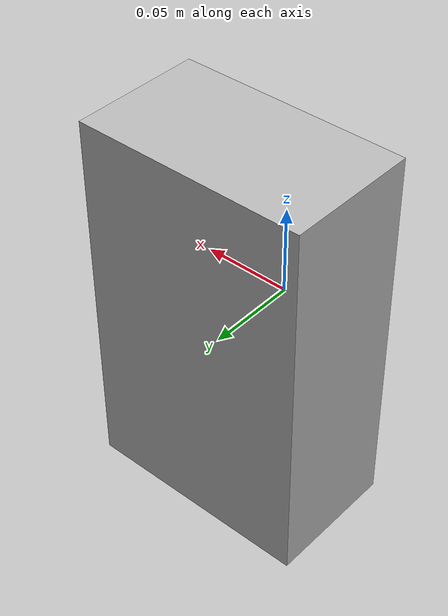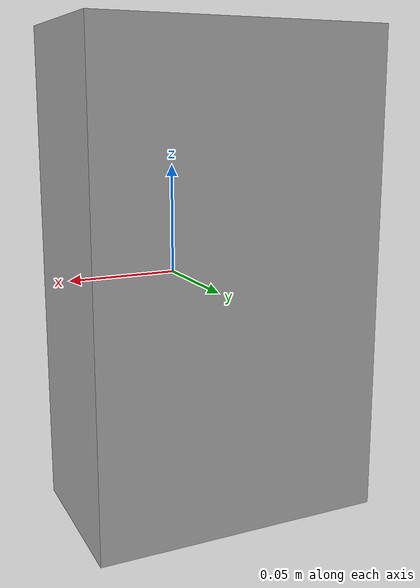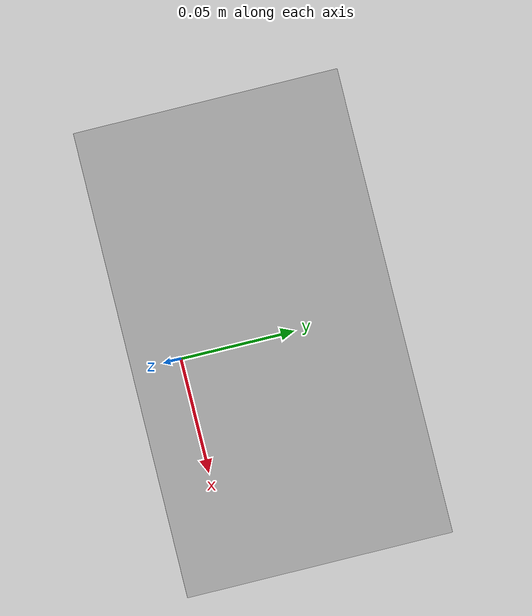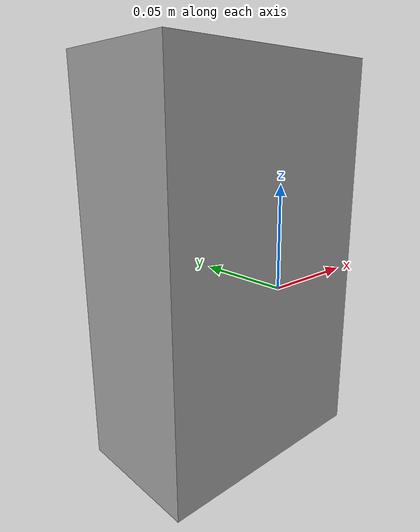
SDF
<?xml version="1.0" ?>
<sdf version="1.4">
  <model name="shelf1_box1_1b">
    <link name="body">
      <pose>0 0 0 0 0 0</pose>
      <inertial>
        <pose>  -0.001445   0.036222   0.005325 0 0 0</pose>
        <mass>0.5</mass>
        <inertia>
          <ixx>0.01</ixx>
          <ixy>0</ixy>
          <ixz>0</ixz>
          <iyy>0.01</iyy>
          <iyz>0</iyz>
          <izz>0.01</izz>
        </inertia>
      </inertial>
      <collision name="collision">
        <geometry>
          <mesh>
            <uri>model://bookshelf/shelf1_items/box1_1b/box1_1b.dae</uri>
          </mesh>
        </geometry>
      </collision>
      <visual name="visual">
        <geometry>
          <mesh>
            <uri>model://bookshelf/shelf1_items/box1_1b/box1_1b.dae</uri>
          </mesh>
        </geometry>
      </visual>
    </link>
  </model>
</sdf>
